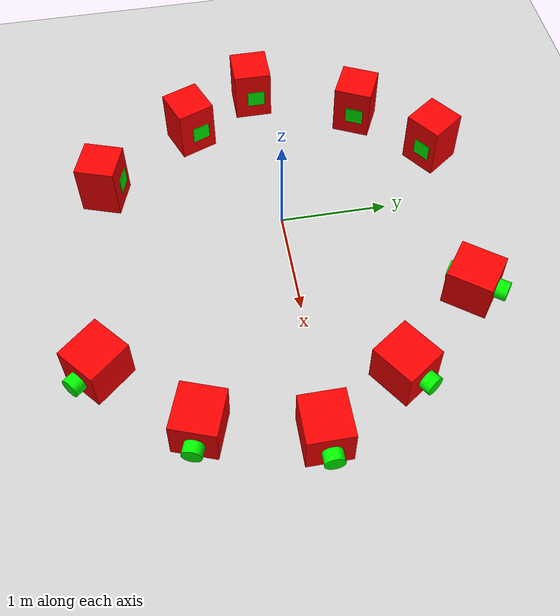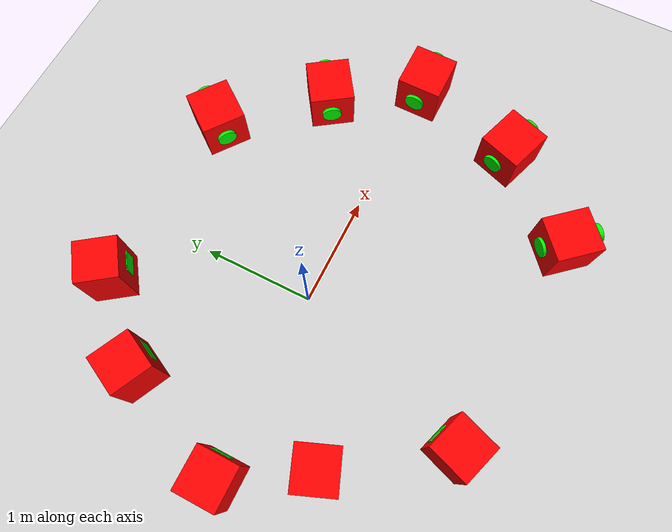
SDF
<sdf version="1.7">
 <world name="default">
  <light name="sun" type="directional">
   <pose>0 0 10 0 -0 0</pose>
   <diffuse>0.8 0.8 0.8 1</diffuse>
   <specular>0.2 0.2 0.2 1</specular>
   <attenuation>
    <range>1000</range>
    <constant>0.9</constant>
    <linear>0.01</linear>
    <quadratic>0.001</quadratic>
   </attenuation>
   <direction>-0.5 0.1 -0.9</direction>
   <spot><inner_angle>0</inner_angle><outer_angle>0</outer_angle><falloff>0</falloff></spot>
  </light>
  <model name="ground_plane">
   <static>1</static>
   <link name="link">
    <collision name="collision">
     <geometry><plane><normal>0 0 1</normal><size>100 100</size></plane></geometry>
     <surface>
      <contact><collide_bitmask>65535</collide_bitmask></contact>
      <friction><ode><mu>100</mu><mu2>50</mu2></ode></friction>
     </surface>
    </collision>
    <visual name="visual">
     <cast_shadows>0</cast_shadows>
     <geometry><plane><normal>0 0 1</normal><size>100 100</size></plane></geometry>
     <material>
      <script><uri>file://media/materials/scripts/gazebo.material</uri><name>Gazebo/Grey</name></script>
     </material>
    </visual>
   </link>
  </model>
  <gravity>0 0 -9.8</gravity>
  <magnetic_field>6e-06 2.3e-05 -4.2e-05</magnetic_field>
  <atmosphere type="adiabatic"/>
  <physics type="ode">
   <max_step_size>0.001</max_step_size>
   <real_time_factor>1</real_time_factor>
   <real_time_update_rate>1000</real_time_update_rate>
  </physics>
  <scene><ambient>0.4 0.4 0.4 1</ambient><background>0.7 0.7 0.7 1</background><shadows>1</shadows></scene>
  <spherical_coordinates>
   <surface_model>EARTH_WGS84</surface_model>
   <latitude_deg>0</latitude_deg>
   <longitude_deg>0</longitude_deg>
   <elevation>0</elevation>
   <heading_deg>0</heading_deg>
  </spherical_coordinates>
  <model name="Untitled3333">
   <link name="link_0">
    <inertial>
     <mass>0.0665017</mass>
     <inertia>
      <ixx>0.00178277</ixx>
      <ixy>0</ixy>
      <ixz>0</ixz>
      <iyy>0.00187929</iyy>
      <iyz>0</iyz>
      <izz>0.00180158</izz>
     </inertia>
    </inertial>
    <pose>-0.018929 -0.005702 0 0 -0 0</pose>
    <gravity>0</gravity>
    <visual name="visual">
     <geometry><box><size>0.413827 0.392218 0.409706</size></box></geometry>
     <material>
      <lighting>1</lighting>
      <script><uri>file://media/materials/scripts/gazebo.material</uri><name>Gazebo/Grey</name></script>
      <shader type="pixel"><normal_map>__default__</normal_map></shader>
      <ambient>1 0 0 0</ambient>
      <diffuse>0.7 0.7 0.7 1</diffuse>
      <specular>0.01 0.01 0.01 1</specular>
      <emissive>0 0 0 1</emissive>
     </material>
    </visual>
    <collision name="collision">
     <geometry><box><size>0.413827 0.392218 0.409706</size></box></geometry>
     <surface>
      <friction>
       <ode><mu>1</mu><mu2>1</mu2><fdir1>0 0 0</fdir1><slip1>0</slip1><slip2>0</slip2></ode>
       <torsional>
        <coefficient>1</coefficient>
        <patch_radius>0</patch_radius>
        <surface_radius>0</surface_radius>
        <use_patch_radius>1</use_patch_radius>
        <ode><slip>0</slip></ode>
       </torsional>
      </friction>
      <bounce><restitution_coefficient>0</restitution_coefficient><threshold>1e+06</threshold></bounce>
      <contact>
       <collide_without_contact>0</collide_without_contact>
       <collide_without_contact_bitmask>1</collide_without_contact_bitmask>
       <collide_bitmask>1</collide_bitmask>
       <ode>
        <soft_cfm>0</soft_cfm>
        <soft_erp>0.2</soft_erp>
        <kp>1e+13</kp>
        <kd>1</kd>
        <max_vel>0.01</max_vel>
        <min_depth>0</min_depth>
       </ode>
       <bullet>
        <split_impulse>1</split_impulse>
        <split_impulse_penetration_threshold>-0.01</split_impulse_penetration_threshold>
        <soft_cfm>0</soft_cfm>
        <soft_erp>0.2</soft_erp>
        <kp>1e+13</kp>
        <kd>1</kd>
       </bullet>
      </contact>
     </surface>
    </collision>
   </link>
   <link name="link_1">
    <inertial>
     <mass>0.0164067</mass>
     <inertia>
      <ixx>0.00043701</ixx>
      <ixy>0</ixy>
      <ixz>0</ixz>
      <iyy>0.00043701</iyy>
      <iyz>0</iyz>
      <izz>6.171e-05</izz>
     </inertia>
    </inertial>
    <pose>0.018926 0.005702 0 -3e-06 1.55761 -3e-06</pose>
    <gravity>0</gravity>
    <visual name="visual">
     <geometry><cylinder><radius>0.0867307</radius><length>0.545035</length></cylinder></geometry>
     <material>
      <lighting>1</lighting>
      <script><uri>file://media/materials/scripts/gazebo.material</uri><name>Gazebo/Grey</name></script>
      <shader type="pixel"><normal_map>__default__</normal_map></shader>
      <ambient>0 1 0 0</ambient>
      <diffuse>0.7 0.7 0.7 1</diffuse>
      <specular>0.01 0.01 0.01 1</specular>
      <emissive>0 0 0 1</emissive>
     </material>
    </visual>
    <collision name="collision">
     <geometry><cylinder><radius>0.086731</radius><length>0.545035</length></cylinder></geometry>
     <surface>
      <friction>
       <ode><mu>1</mu><mu2>1</mu2><fdir1>0 0 0</fdir1><slip1>0</slip1><slip2>0</slip2></ode>
       <torsional>
        <coefficient>1</coefficient>
        <patch_radius>0</patch_radius>
        <surface_radius>0</surface_radius>
        <use_patch_radius>1</use_patch_radius>
        <ode><slip>0</slip></ode>
       </torsional>
      </friction>
      <bounce><restitution_coefficient>0</restitution_coefficient><threshold>1e+06</threshold></bounce>
      <contact>
       <collide_without_contact>0</collide_without_contact>
       <collide_without_contact_bitmask>1</collide_without_contact_bitmask>
       <collide_bitmask>1</collide_bitmask>
       <ode>
        <soft_cfm>0</soft_cfm>
        <soft_erp>0.2</soft_erp>
        <kp>1e+13</kp>
        <kd>1</kd>
        <max_vel>0.01</max_vel>
        <min_depth>0</min_depth>
       </ode>
       <bullet>
        <split_impulse>1</split_impulse>
        <split_impulse_penetration_threshold>-0.01</split_impulse_penetration_threshold>
        <soft_cfm>0</soft_cfm>
        <soft_erp>0.2</soft_erp>
        <kp>1e+13</kp>
        <kd>1</kd>
       </bullet>
      </contact>
     </surface>
    </collision>
   </link>
   <static>0</static>
   <pose>2.29043 -0.048316 0.270427 0 -0 0</pose>
  </model>
  <model name="Untitled3333_clone">
   <link name="link_0">
    <inertial>
     <mass>0.0665017</mass>
     <inertia>
      <ixx>0.00178277</ixx>
      <ixy>0</ixy>
      <ixz>0</ixz>
      <iyy>0.00187929</iyy>
      <iyz>0</iyz>
      <izz>0.00180158</izz>
     </inertia>
    </inertial>
    <pose>-0.018929 -0.005702 0 0 -0 0</pose>
    <gravity>0</gravity>
    <visual name="visual">
     <geometry><box><size>0.413827 0.392218 0.409706</size></box></geometry>
     <material>
      <lighting>1</lighting>
      <script><uri>file://media/materials/scripts/gazebo.material</uri><name>Gazebo/Grey</name></script>
      <shader type="pixel"><normal_map>__default__</normal_map></shader>
      <ambient>1 0 0 0</ambient>
      <diffuse>0.7 0.7 0.7 1</diffuse>
      <specular>0.01 0.01 0.01 1</specular>
      <emissive>0 0 0 1</emissive>
     </material>
    </visual>
    <collision name="collision">
     <geometry><box><size>0.413827 0.392218 0.409706</size></box></geometry>
     <surface>
      <friction>
       <ode><mu>1</mu><mu2>1</mu2><fdir1>0 0 0</fdir1><slip1>0</slip1><slip2>0</slip2></ode>
       <torsional>
        <coefficient>1</coefficient>
        <patch_radius>0</patch_radius>
        <surface_radius>0</surface_radius>
        <use_patch_radius>1</use_patch_radius>
        <ode><slip>0</slip></ode>
       </torsional>
      </friction>
      <bounce><restitution_coefficient>0</restitution_coefficient><threshold>1e+06</threshold></bounce>
      <contact>
       <collide_without_contact>0</collide_without_contact>
       <collide_without_contact_bitmask>1</collide_without_contact_bitmask>
       <collide_bitmask>1</collide_bitmask>
       <ode>
        <soft_cfm>0</soft_cfm>
        <soft_erp>0.2</soft_erp>
        <kp>1e+13</kp>
        <kd>1</kd>
        <max_vel>0.01</max_vel>
        <min_depth>0</min_depth>
       </ode>
       <bullet>
        <split_impulse>1</split_impulse>
        <split_impulse_penetration_threshold>-0.01</split_impulse_penetration_threshold>
        <soft_cfm>0</soft_cfm>
        <soft_erp>0.2</soft_erp>
        <kp>1e+13</kp>
        <kd>1</kd>
       </bullet>
      </contact>
     </surface>
    </collision>
   </link>
   <link name="link_1">
    <inertial>
     <mass>0.0164067</mass>
     <inertia>
      <ixx>0.00043701</ixx>
      <ixy>0</ixy>
      <ixz>0</ixz>
      <iyy>0.00043701</iyy>
      <iyz>0</iyz>
      <izz>6.171e-05</izz>
     </inertia>
    </inertial>
    <pose>0.018926 0.005702 0 -3e-06 1.55761 -3e-06</pose>
    <gravity>0</gravity>
    <visual name="visual">
     <geometry><cylinder><radius>0.0867307</radius><length>0.545035</length></cylinder></geometry>
     <material>
      <lighting>1</lighting>
      <script><uri>file://media/materials/scripts/gazebo.material</uri><name>Gazebo/Grey</name></script>
      <shader type="pixel"><normal_map>__default__</normal_map></shader>
      <ambient>0 1 0 0</ambient>
      <diffuse>0.7 0.7 0.7 1</diffuse>
      <specular>0.01 0.01 0.01 1</specular>
      <emissive>0 0 0 1</emissive>
     </material>
    </visual>
    <collision name="collision">
     <geometry><cylinder><radius>0.086731</radius><length>0.545035</length></cylinder></geometry>
     <surface>
      <friction>
       <ode><mu>1</mu><mu2>1</mu2><fdir1>0 0 0</fdir1><slip1>0</slip1><slip2>0</slip2></ode>
       <torsional>
        <coefficient>1</coefficient>
        <patch_radius>0</patch_radius>
        <surface_radius>0</surface_radius>
        <use_patch_radius>1</use_patch_radius>
        <ode><slip>0</slip></ode>
       </torsional>
      </friction>
      <bounce><restitution_coefficient>0</restitution_coefficient><threshold>1e+06</threshold></bounce>
      <contact>
       <collide_without_contact>0</collide_without_contact>
       <collide_without_contact_bitmask>1</collide_without_contact_bitmask>
       <collide_bitmask>1</collide_bitmask>
       <ode>
        <soft_cfm>0</soft_cfm>
        <soft_erp>0.2</soft_erp>
        <kp>1e+13</kp>
        <kd>1</kd>
        <max_vel>0.01</max_vel>
        <min_depth>0</min_depth>
       </ode>
       <bullet>
        <split_impulse>1</split_impulse>
        <split_impulse_penetration_threshold>-0.01</split_impulse_penetration_threshold>
        <soft_cfm>0</soft_cfm>
        <soft_erp>0.2</soft_erp>
        <kp>1e+13</kp>
        <kd>1</kd>
       </bullet>
      </contact>
     </surface>
    </collision>
   </link>
   <static>0</static>
   <pose>1.12255 1.51895 0.229514 0 -0 0.922795</pose>
  </model>
  <model name="Untitled3333_clone_0">
   <link name="link_0">
    <inertial>
     <mass>0.0665017</mass>
     <inertia>
      <ixx>0.00178277</ixx>
      <ixy>0</ixy>
      <ixz>0</ixz>
      <iyy>0.00187929</iyy>
      <iyz>0</iyz>
      <izz>0.00180158</izz>
     </inertia>
    </inertial>
    <pose>-0.018929 -0.005702 0 0 -0 0</pose>
    <gravity>0</gravity>
    <visual name="visual">
     <geometry><box><size>0.413827 0.392218 0.409706</size></box></geometry>
     <material>
      <lighting>1</lighting>
      <script><uri>file://media/materials/scripts/gazebo.material</uri><name>Gazebo/Grey</name></script>
      <shader type="pixel"><normal_map>__default__</normal_map></shader>
      <ambient>1 0 0 0</ambient>
      <diffuse>0.7 0.7 0.7 1</diffuse>
      <specular>0.01 0.01 0.01 1</specular>
      <emissive>0 0 0 1</emissive>
     </material>
    </visual>
    <collision name="collision">
     <geometry><box><size>0.413827 0.392218 0.409706</size></box></geometry>
     <surface>
      <friction>
       <ode><mu>1</mu><mu2>1</mu2><fdir1>0 0 0</fdir1><slip1>0</slip1><slip2>0</slip2></ode>
       <torsional>
        <coefficient>1</coefficient>
        <patch_radius>0</patch_radius>
        <surface_radius>0</surface_radius>
        <use_patch_radius>1</use_patch_radius>
        <ode><slip>0</slip></ode>
       </torsional>
      </friction>
      <bounce><restitution_coefficient>0</restitution_coefficient><threshold>1e+06</threshold></bounce>
      <contact>
       <collide_without_contact>0</collide_without_contact>
       <collide_without_contact_bitmask>1</collide_without_contact_bitmask>
       <collide_bitmask>1</collide_bitmask>
       <ode>
        <soft_cfm>0</soft_cfm>
        <soft_erp>0.2</soft_erp>
        <kp>1e+13</kp>
        <kd>1</kd>
        <max_vel>0.01</max_vel>
        <min_depth>0</min_depth>
       </ode>
       <bullet>
        <split_impulse>1</split_impulse>
        <split_impulse_penetration_threshold>-0.01</split_impulse_penetration_threshold>
        <soft_cfm>0</soft_cfm>
        <soft_erp>0.2</soft_erp>
        <kp>1e+13</kp>
        <kd>1</kd>
       </bullet>
      </contact>
     </surface>
    </collision>
   </link>
   <link name="link_1">
    <inertial>
     <mass>0.0164067</mass>
     <inertia>
      <ixx>0.00043701</ixx>
      <ixy>0</ixy>
      <ixz>0</ixz>
      <iyy>0.00043701</iyy>
      <iyz>0</iyz>
      <izz>6.171e-05</izz>
     </inertia>
    </inertial>
    <pose>0.018926 0.005702 0 -3e-06 1.55761 -3e-06</pose>
    <gravity>0</gravity>
    <visual name="visual">
     <geometry><cylinder><radius>0.0867307</radius><length>0.545035</length></cylinder></geometry>
     <material>
      <lighting>1</lighting>
      <script><uri>file://media/materials/scripts/gazebo.material</uri><name>Gazebo/Grey</name></script>
      <shader type="pixel"><normal_map>__default__</normal_map></shader>
      <ambient>0 1 0 0</ambient>
      <diffuse>0.7 0.7 0.7 1</diffuse>
      <specular>0.01 0.01 0.01 1</specular>
      <emissive>0 0 0 1</emissive>
     </material>
    </visual>
    <collision name="collision">
     <geometry><cylinder><radius>0.086731</radius><length>0.545035</length></cylinder></geometry>
     <surface>
      <friction>
       <ode><mu>1</mu><mu2>1</mu2><fdir1>0 0 0</fdir1><slip1>0</slip1><slip2>0</slip2></ode>
       <torsional>
        <coefficient>1</coefficient>
        <patch_radius>0</patch_radius>
        <surface_radius>0</surface_radius>
        <use_patch_radius>1</use_patch_radius>
        <ode><slip>0</slip></ode>
       </torsional>
      </friction>
      <bounce><restitution_coefficient>0</restitution_coefficient><threshold>1e+06</threshold></bounce>
      <contact>
       <collide_without_contact>0</collide_without_contact>
       <collide_without_contact_bitmask>1</collide_without_contact_bitmask>
       <collide_bitmask>1</collide_bitmask>
       <ode>
        <soft_cfm>0</soft_cfm>
        <soft_erp>0.2</soft_erp>
        <kp>1e+13</kp>
        <kd>1</kd>
        <max_vel>0.01</max_vel>
        <min_depth>0</min_depth>
       </ode>
       <bullet>
        <split_impulse>1</split_impulse>
        <split_impulse_penetration_threshold>-0.01</split_impulse_penetration_threshold>
        <soft_cfm>0</soft_cfm>
        <soft_erp>0.2</soft_erp>
        <kp>1e+13</kp>
        <kd>1</kd>
       </bullet>
      </contact>
     </surface>
    </collision>
   </link>
   <static>0</static>
   <pose>1.82504 0.721813 0.226858 0 -0 0.597752</pose>
  </model>
  <model name="Untitled3333_clone_1">
   <link name="link_0">
    <inertial>
     <mass>0.0665017</mass>
     <inertia>
      <ixx>0.00178277</ixx>
      <ixy>0</ixy>
      <ixz>0</ixz>
      <iyy>0.00187929</iyy>
      <iyz>0</iyz>
      <izz>0.00180158</izz>
     </inertia>
    </inertial>
    <pose>-0.018929 -0.005702 0 0 -0 0</pose>
    <gravity>0</gravity>
    <visual name="visual">
     <geometry><box><size>0.413827 0.392218 0.409706</size></box></geometry>
     <material>
      <lighting>1</lighting>
      <script><uri>file://media/materials/scripts/gazebo.material</uri><name>Gazebo/Grey</name></script>
      <shader type="pixel"><normal_map>__default__</normal_map></shader>
      <ambient>1 0 0 0</ambient>
      <diffuse>0.7 0.7 0.7 1</diffuse>
      <specular>0.01 0.01 0.01 1</specular>
      <emissive>0 0 0 1</emissive>
     </material>
    </visual>
    <collision name="collision">
     <geometry><box><size>0.413827 0.392218 0.409706</size></box></geometry>
     <surface>
      <friction>
       <ode><mu>1</mu><mu2>1</mu2><fdir1>0 0 0</fdir1><slip1>0</slip1><slip2>0</slip2></ode>
       <torsional>
        <coefficient>1</coefficient>
        <patch_radius>0</patch_radius>
        <surface_radius>0</surface_radius>
        <use_patch_radius>1</use_patch_radius>
        <ode><slip>0</slip></ode>
       </torsional>
      </friction>
      <bounce><restitution_coefficient>0</restitution_coefficient><threshold>1e+06</threshold></bounce>
      <contact>
       <collide_without_contact>0</collide_without_contact>
       <collide_without_contact_bitmask>1</collide_without_contact_bitmask>
       <collide_bitmask>1</collide_bitmask>
       <ode>
        <soft_cfm>0</soft_cfm>
        <soft_erp>0.2</soft_erp>
        <kp>1e+13</kp>
        <kd>1</kd>
        <max_vel>0.01</max_vel>
        <min_depth>0</min_depth>
       </ode>
       <bullet>
        <split_impulse>1</split_impulse>
        <split_impulse_penetration_threshold>-0.01</split_impulse_penetration_threshold>
        <soft_cfm>0</soft_cfm>
        <soft_erp>0.2</soft_erp>
        <kp>1e+13</kp>
        <kd>1</kd>
       </bullet>
      </contact>
     </surface>
    </collision>
   </link>
   <link name="link_1">
    <inertial>
     <mass>0.0164067</mass>
     <inertia>
      <ixx>0.00043701</ixx>
      <ixy>0</ixy>
      <ixz>0</ixz>
      <iyy>0.00043701</iyy>
      <iyz>0</iyz>
      <izz>6.171e-05</izz>
     </inertia>
    </inertial>
    <pose>0.018926 0.005702 0 -3e-06 1.55761 -3e-06</pose>
    <gravity>0</gravity>
    <visual name="visual">
     <geometry><cylinder><radius>0.0867307</radius><length>0.545035</length></cylinder></geometry>
     <material>
      <lighting>1</lighting>
      <script><uri>file://media/materials/scripts/gazebo.material</uri><name>Gazebo/Grey</name></script>
      <shader type="pixel"><normal_map>__default__</normal_map></shader>
      <ambient>0 1 0 0</ambient>
      <diffuse>0.7 0.7 0.7 1</diffuse>
      <specular>0.01 0.01 0.01 1</specular>
      <emissive>0 0 0 1</emissive>
     </material>
    </visual>
    <collision name="collision">
     <geometry><cylinder><radius>0.086731</radius><length>0.545035</length></cylinder></geometry>
     <surface>
      <friction>
       <ode><mu>1</mu><mu2>1</mu2><fdir1>0 0 0</fdir1><slip1>0</slip1><slip2>0</slip2></ode>
       <torsional>
        <coefficient>1</coefficient>
        <patch_radius>0</patch_radius>
        <surface_radius>0</surface_radius>
        <use_patch_radius>1</use_patch_radius>
        <ode><slip>0</slip></ode>
       </torsional>
      </friction>
      <bounce><restitution_coefficient>0</restitution_coefficient><threshold>1e+06</threshold></bounce>
      <contact>
       <collide_without_contact>0</collide_without_contact>
       <collide_without_contact_bitmask>1</collide_without_contact_bitmask>
       <collide_bitmask>1</collide_bitmask>
       <ode>
        <soft_cfm>0</soft_cfm>
        <soft_erp>0.2</soft_erp>
        <kp>1e+13</kp>
        <kd>1</kd>
        <max_vel>0.01</max_vel>
        <min_depth>0</min_depth>
       </ode>
       <bullet>
        <split_impulse>1</split_impulse>
        <split_impulse_penetration_threshold>-0.01</split_impulse_penetration_threshold>
        <soft_cfm>0</soft_cfm>
        <soft_erp>0.2</soft_erp>
        <kp>1e+13</kp>
        <kd>1</kd>
       </bullet>
      </contact>
     </surface>
    </collision>
   </link>
   <static>0</static>
   <pose>2.03922 -1.01121 0.224446 -0.021815 -0.007745 -0.341097</pose>
  </model>
  <model name="Untitled3333_clone_2">
   <link name="link_0">
    <inertial>
     <mass>0.0665017</mass>
     <inertia>
      <ixx>0.00178277</ixx>
      <ixy>0</ixy>
      <ixz>0</ixz>
      <iyy>0.00187929</iyy>
      <iyz>0</iyz>
      <izz>0.00180158</izz>
     </inertia>
    </inertial>
    <pose>-0.018929 -0.005702 0 0 -0 0</pose>
    <gravity>0</gravity>
    <visual name="visual">
     <geometry><box><size>0.413827 0.392218 0.409706</size></box></geometry>
     <material>
      <lighting>1</lighting>
      <script><uri>file://media/materials/scripts/gazebo.material</uri><name>Gazebo/Grey</name></script>
      <shader type="pixel"><normal_map>__default__</normal_map></shader>
      <ambient>1 0 0 0</ambient>
      <diffuse>0.7 0.7 0.7 1</diffuse>
      <specular>0.01 0.01 0.01 1</specular>
      <emissive>0 0 0 1</emissive>
     </material>
    </visual>
    <collision name="collision">
     <geometry><box><size>0.413827 0.392218 0.409706</size></box></geometry>
     <surface>
      <friction>
       <ode><mu>1</mu><mu2>1</mu2><fdir1>0 0 0</fdir1><slip1>0</slip1><slip2>0</slip2></ode>
       <torsional>
        <coefficient>1</coefficient>
        <patch_radius>0</patch_radius>
        <surface_radius>0</surface_radius>
        <use_patch_radius>1</use_patch_radius>
        <ode><slip>0</slip></ode>
       </torsional>
      </friction>
      <bounce><restitution_coefficient>0</restitution_coefficient><threshold>1e+06</threshold></bounce>
      <contact>
       <collide_without_contact>0</collide_without_contact>
       <collide_without_contact_bitmask>1</collide_without_contact_bitmask>
       <collide_bitmask>1</collide_bitmask>
       <ode>
        <soft_cfm>0</soft_cfm>
        <soft_erp>0.2</soft_erp>
        <kp>1e+13</kp>
        <kd>1</kd>
        <max_vel>0.01</max_vel>
        <min_depth>0</min_depth>
       </ode>
       <bullet>
        <split_impulse>1</split_impulse>
        <split_impulse_penetration_threshold>-0.01</split_impulse_penetration_threshold>
        <soft_cfm>0</soft_cfm>
        <soft_erp>0.2</soft_erp>
        <kp>1e+13</kp>
        <kd>1</kd>
       </bullet>
      </contact>
     </surface>
    </collision>
   </link>
   <link name="link_1">
    <inertial>
     <mass>0.0164067</mass>
     <inertia>
      <ixx>0.00043701</ixx>
      <ixy>0</ixy>
      <ixz>0</ixz>
      <iyy>0.00043701</iyy>
      <iyz>0</iyz>
      <izz>6.171e-05</izz>
     </inertia>
    </inertial>
    <pose>0.018926 0.005702 0 -3e-06 1.55761 -3e-06</pose>
    <gravity>0</gravity>
    <visual name="visual">
     <geometry><cylinder><radius>0.0867307</radius><length>0.545035</length></cylinder></geometry>
     <material>
      <lighting>1</lighting>
      <script><uri>file://media/materials/scripts/gazebo.material</uri><name>Gazebo/Grey</name></script>
      <shader type="pixel"><normal_map>__default__</normal_map></shader>
      <ambient>0 1 0 0</ambient>
      <diffuse>0.7 0.7 0.7 1</diffuse>
      <specular>0.01 0.01 0.01 1</specular>
      <emissive>0 0 0 1</emissive>
     </material>
    </visual>
    <collision name="collision">
     <geometry><cylinder><radius>0.086731</radius><length>0.545035</length></cylinder></geometry>
     <surface>
      <friction>
       <ode><mu>1</mu><mu2>1</mu2><fdir1>0 0 0</fdir1><slip1>0</slip1><slip2>0</slip2></ode>
       <torsional>
        <coefficient>1</coefficient>
        <patch_radius>0</patch_radius>
        <surface_radius>0</surface_radius>
        <use_patch_radius>1</use_patch_radius>
        <ode><slip>0</slip></ode>
       </torsional>
      </friction>
      <bounce><restitution_coefficient>0</restitution_coefficient><threshold>1e+06</threshold></bounce>
      <contact>
       <collide_without_contact>0</collide_without_contact>
       <collide_without_contact_bitmask>1</collide_without_contact_bitmask>
       <collide_bitmask>1</collide_bitmask>
       <ode>
        <soft_cfm>0</soft_cfm>
        <soft_erp>0.2</soft_erp>
        <kp>1e+13</kp>
        <kd>1</kd>
        <max_vel>0.01</max_vel>
        <min_depth>0</min_depth>
       </ode>
       <bullet>
        <split_impulse>1</split_impulse>
        <split_impulse_penetration_threshold>-0.01</split_impulse_penetration_threshold>
        <soft_cfm>0</soft_cfm>
        <soft_erp>0.2</soft_erp>
        <kp>1e+13</kp>
        <kd>1</kd>
       </bullet>
      </contact>
     </surface>
    </collision>
   </link>
   <static>0</static>
   <pose>1.39318 -1.77826 0.254839 0 0 -0.855886</pose>
  </model>
  <model name="Untitled77">
   <link name="link_2">
    <inertial>
     <mass>0.078193</mass>
     <inertia>
      <ixx>0.00312522</ixx>
      <ixy>0</ixy>
      <ixz>0</ixz>
      <iyy>0.00315463</iyy>
      <iyz>0</iyz>
      <izz>0.00172041</izz>
     </inertia>
    </inertial>
    <pose>-0.052025 -0.015051 0 0 -0 0</pose>
    <gravity>0</gravity>
    <visual name="visual">
     <geometry><box><size>0.366428 0.360217 0.59149</size></box></geometry>
     <material>
      <lighting>1</lighting>
      <script><uri>file://media/materials/scripts/gazebo.material</uri><name>Gazebo/Grey</name></script>
      <shader type="pixel"><normal_map>__default__</normal_map></shader>
      <ambient>1 0 0 0</ambient>
      <diffuse>0.7 0.7 0.7 1</diffuse>
      <specular>0.01 0.01 0.01 1</specular>
      <emissive>0 0 0 1</emissive>
     </material>
    </visual>
    <collision name="collision">
     <geometry><box><size>0.366428 0.360217 0.59149</size></box></geometry>
     <surface>
      <friction>
       <ode><mu>1</mu><mu2>1</mu2><fdir1>0 0 0</fdir1><slip1>0</slip1><slip2>0</slip2></ode>
       <torsional>
        <coefficient>1</coefficient>
        <patch_radius>0</patch_radius>
        <surface_radius>0</surface_radius>
        <use_patch_radius>1</use_patch_radius>
        <ode><slip>0</slip></ode>
       </torsional>
      </friction>
      <bounce><restitution_coefficient>0</restitution_coefficient><threshold>1e+06</threshold></bounce>
      <contact>
       <collide_without_contact>0</collide_without_contact>
       <collide_without_contact_bitmask>1</collide_without_contact_bitmask>
       <collide_bitmask>1</collide_bitmask>
       <ode>
        <soft_cfm>0</soft_cfm>
        <soft_erp>0.2</soft_erp>
        <kp>1e+13</kp>
        <kd>1</kd>
        <max_vel>0.01</max_vel>
        <min_depth>0</min_depth>
       </ode>
       <bullet>
        <split_impulse>1</split_impulse>
        <split_impulse_penetration_threshold>-0.01</split_impulse_penetration_threshold>
        <soft_cfm>0</soft_cfm>
        <soft_erp>0.2</soft_erp>
        <kp>1e+13</kp>
        <kd>1</kd>
       </bullet>
      </contact>
     </surface>
    </collision>
   </link>
   <link name="link_3">
    <inertial>
     <mass>0.00507577</mass>
     <inertia>
      <ixx>2.499e-05</ixx>
      <ixy>0</ixy>
      <ixz>0</ixz>
      <iyy>2.499e-05</iyy>
      <iyz>0</iyz>
      <izz>2.499e-05</izz>
     </inertia>
    </inertial>
    <pose>0.052025 0.015051 0 0 -0 0</pose>
    <gravity>0</gravity>
    <visual name="visual">
     <geometry><box><size>0.171857 0.171857 0.171857</size></box></geometry>
     <material>
      <lighting>1</lighting>
      <script><uri>file://media/materials/scripts/gazebo.material</uri><name>Gazebo/Grey</name></script>
      <shader type="pixel"><normal_map>__default__</normal_map></shader>
      <ambient>0 1 0 0</ambient>
      <diffuse>0.7 0.7 0.7 1</diffuse>
      <specular>0.01 0.01 0.01 1</specular>
      <emissive>0 0 0 1</emissive>
     </material>
    </visual>
    <collision name="collision">
     <geometry><box><size>0.171857 0.171857 0.171857</size></box></geometry>
     <surface>
      <friction>
       <ode><mu>1</mu><mu2>1</mu2><fdir1>0 0 0</fdir1><slip1>0</slip1><slip2>0</slip2></ode>
       <torsional>
        <coefficient>1</coefficient>
        <patch_radius>0</patch_radius>
        <surface_radius>0</surface_radius>
        <use_patch_radius>1</use_patch_radius>
        <ode><slip>0</slip></ode>
       </torsional>
      </friction>
      <bounce><restitution_coefficient>0</restitution_coefficient><threshold>1e+06</threshold></bounce>
      <contact>
       <collide_without_contact>0</collide_without_contact>
       <collide_without_contact_bitmask>1</collide_without_contact_bitmask>
       <collide_bitmask>1</collide_bitmask>
       <ode>
        <soft_cfm>0</soft_cfm>
        <soft_erp>0.2</soft_erp>
        <kp>1e+13</kp>
        <kd>1</kd>
        <max_vel>0.01</max_vel>
        <min_depth>0</min_depth>
       </ode>
       <bullet>
        <split_impulse>1</split_impulse>
        <split_impulse_penetration_threshold>-0.01</split_impulse_penetration_threshold>
        <soft_cfm>0</soft_cfm>
        <soft_erp>0.2</soft_erp>
        <kp>1e+13</kp>
        <kd>1</kd>
       </bullet>
      </contact>
     </surface>
    </collision>
   </link>
   <static>0</static>
   <pose>-1.56187 -0.031748 0.233053 0 -0 0</pose>
  </model>
  <model name="Untitled77_clone">
   <link name="link_2">
    <inertial>
     <mass>0.078193</mass>
     <inertia>
      <ixx>0.00312522</ixx>
      <ixy>0</ixy>
      <ixz>0</ixz>
      <iyy>0.00315463</iyy>
      <iyz>0</iyz>
      <izz>0.00172041</izz>
     </inertia>
    </inertial>
    <pose>-0.052025 -0.015051 0 0 -0 0</pose>
    <gravity>0</gravity>
    <visual name="visual">
     <geometry><box><size>0.366428 0.360217 0.59149</size></box></geometry>
     <material>
      <lighting>1</lighting>
      <script><uri>file://media/materials/scripts/gazebo.material</uri><name>Gazebo/Grey</name></script>
      <shader type="pixel"><normal_map>__default__</normal_map></shader>
      <ambient>1 0 0 0</ambient>
      <diffuse>0.7 0.7 0.7 1</diffuse>
      <specular>0.01 0.01 0.01 1</specular>
      <emissive>0 0 0 1</emissive>
     </material>
    </visual>
    <collision name="collision">
     <geometry><box><size>0.366428 0.360217 0.59149</size></box></geometry>
     <surface>
      <friction>
       <ode><mu>1</mu><mu2>1</mu2><fdir1>0 0 0</fdir1><slip1>0</slip1><slip2>0</slip2></ode>
       <torsional>
        <coefficient>1</coefficient>
        <patch_radius>0</patch_radius>
        <surface_radius>0</surface_radius>
        <use_patch_radius>1</use_patch_radius>
        <ode><slip>0</slip></ode>
       </torsional>
      </friction>
      <bounce><restitution_coefficient>0</restitution_coefficient><threshold>1e+06</threshold></bounce>
      <contact>
       <collide_without_contact>0</collide_without_contact>
       <collide_without_contact_bitmask>1</collide_without_contact_bitmask>
       <collide_bitmask>1</collide_bitmask>
       <ode>
        <soft_cfm>0</soft_cfm>
        <soft_erp>0.2</soft_erp>
        <kp>1e+13</kp>
        <kd>1</kd>
        <max_vel>0.01</max_vel>
        <min_depth>0</min_depth>
       </ode>
       <bullet>
        <split_impulse>1</split_impulse>
        <split_impulse_penetration_threshold>-0.01</split_impulse_penetration_threshold>
        <soft_cfm>0</soft_cfm>
        <soft_erp>0.2</soft_erp>
        <kp>1e+13</kp>
        <kd>1</kd>
       </bullet>
      </contact>
     </surface>
    </collision>
   </link>
   <link name="link_3">
    <inertial>
     <mass>0.00507577</mass>
     <inertia>
      <ixx>2.499e-05</ixx>
      <ixy>0</ixy>
      <ixz>0</ixz>
      <iyy>2.499e-05</iyy>
      <iyz>0</iyz>
      <izz>2.499e-05</izz>
     </inertia>
    </inertial>
    <pose>0.052025 0.015051 0 0 -0 0</pose>
    <gravity>0</gravity>
    <visual name="visual">
     <geometry><box><size>0.171857 0.171857 0.171857</size></box></geometry>
     <material>
      <lighting>1</lighting>
      <script><uri>file://media/materials/scripts/gazebo.material</uri><name>Gazebo/Grey</name></script>
      <shader type="pixel"><normal_map>__default__</normal_map></shader>
      <ambient>0 1 0 0</ambient>
      <diffuse>0.7 0.7 0.7 1</diffuse>
      <specular>0.01 0.01 0.01 1</specular>
      <emissive>0 0 0 1</emissive>
     </material>
    </visual>
    <collision name="collision">
     <geometry><box><size>0.171857 0.171857 0.171857</size></box></geometry>
     <surface>
      <friction>
       <ode><mu>1</mu><mu2>1</mu2><fdir1>0 0 0</fdir1><slip1>0</slip1><slip2>0</slip2></ode>
       <torsional>
        <coefficient>1</coefficient>
        <patch_radius>0</patch_radius>
        <surface_radius>0</surface_radius>
        <use_patch_radius>1</use_patch_radius>
        <ode><slip>0</slip></ode>
       </torsional>
      </friction>
      <bounce><restitution_coefficient>0</restitution_coefficient><threshold>1e+06</threshold></bounce>
      <contact>
       <collide_without_contact>0</collide_without_contact>
       <collide_without_contact_bitmask>1</collide_without_contact_bitmask>
       <collide_bitmask>1</collide_bitmask>
       <ode>
        <soft_cfm>0</soft_cfm>
        <soft_erp>0.2</soft_erp>
        <kp>1e+13</kp>
        <kd>1</kd>
        <max_vel>0.01</max_vel>
        <min_depth>0</min_depth>
       </ode>
       <bullet>
        <split_impulse>1</split_impulse>
        <split_impulse_penetration_threshold>-0.01</split_impulse_penetration_threshold>
        <soft_cfm>0</soft_cfm>
        <soft_erp>0.2</soft_erp>
        <kp>1e+13</kp>
        <kd>1</kd>
       </bullet>
      </contact>
     </surface>
    </collision>
   </link>
   <static>0</static>
   <pose>-1.13724 0.955024 0.233053 0 0 -0.452946</pose>
  </model>
  <model name="Untitled77_clone_0">
   <link name="link_2">
    <inertial>
     <mass>0.078193</mass>
     <inertia>
      <ixx>0.00312522</ixx>
      <ixy>0</ixy>
      <ixz>0</ixz>
      <iyy>0.00315463</iyy>
      <iyz>0</iyz>
      <izz>0.00172041</izz>
     </inertia>
    </inertial>
    <pose>-0.052025 -0.015051 0 0 -0 0</pose>
    <gravity>0</gravity>
    <visual name="visual">
     <geometry><box><size>0.366428 0.360217 0.59149</size></box></geometry>
     <material>
      <lighting>1</lighting>
      <script><uri>file://media/materials/scripts/gazebo.material</uri><name>Gazebo/Grey</name></script>
      <shader type="pixel"><normal_map>__default__</normal_map></shader>
      <ambient>1 0 0 0</ambient>
      <diffuse>0.7 0.7 0.7 1</diffuse>
      <specular>0.01 0.01 0.01 1</specular>
      <emissive>0 0 0 1</emissive>
     </material>
    </visual>
    <collision name="collision">
     <geometry><box><size>0.366428 0.360217 0.59149</size></box></geometry>
     <surface>
      <friction>
       <ode><mu>1</mu><mu2>1</mu2><fdir1>0 0 0</fdir1><slip1>0</slip1><slip2>0</slip2></ode>
       <torsional>
        <coefficient>1</coefficient>
        <patch_radius>0</patch_radius>
        <surface_radius>0</surface_radius>
        <use_patch_radius>1</use_patch_radius>
        <ode><slip>0</slip></ode>
       </torsional>
      </friction>
      <bounce><restitution_coefficient>0</restitution_coefficient><threshold>1e+06</threshold></bounce>
      <contact>
       <collide_without_contact>0</collide_without_contact>
       <collide_without_contact_bitmask>1</collide_without_contact_bitmask>
       <collide_bitmask>1</collide_bitmask>
       <ode>
        <soft_cfm>0</soft_cfm>
        <soft_erp>0.2</soft_erp>
        <kp>1e+13</kp>
        <kd>1</kd>
        <max_vel>0.01</max_vel>
        <min_depth>0</min_depth>
       </ode>
       <bullet>
        <split_impulse>1</split_impulse>
        <split_impulse_penetration_threshold>-0.01</split_impulse_penetration_threshold>
        <soft_cfm>0</soft_cfm>
        <soft_erp>0.2</soft_erp>
        <kp>1e+13</kp>
        <kd>1</kd>
       </bullet>
      </contact>
     </surface>
    </collision>
   </link>
   <link name="link_3">
    <inertial>
     <mass>0.00507577</mass>
     <inertia>
      <ixx>2.499e-05</ixx>
      <ixy>0</ixy>
      <ixz>0</ixz>
      <iyy>2.499e-05</iyy>
      <iyz>0</iyz>
      <izz>2.499e-05</izz>
     </inertia>
    </inertial>
    <pose>0.052025 0.015051 0 0 -0 0</pose>
    <gravity>0</gravity>
    <visual name="visual">
     <geometry><box><size>0.171857 0.171857 0.171857</size></box></geometry>
     <material>
      <lighting>1</lighting>
      <script><uri>file://media/materials/scripts/gazebo.material</uri><name>Gazebo/Grey</name></script>
      <shader type="pixel"><normal_map>__default__</normal_map></shader>
      <ambient>0 1 0 0</ambient>
      <diffuse>0.7 0.7 0.7 1</diffuse>
      <specular>0.01 0.01 0.01 1</specular>
      <emissive>0 0 0 1</emissive>
     </material>
    </visual>
    <collision name="collision">
     <geometry><box><size>0.171857 0.171857 0.171857</size></box></geometry>
     <surface>
      <friction>
       <ode><mu>1</mu><mu2>1</mu2><fdir1>0 0 0</fdir1><slip1>0</slip1><slip2>0</slip2></ode>
       <torsional>
        <coefficient>1</coefficient>
        <patch_radius>0</patch_radius>
        <surface_radius>0</surface_radius>
        <use_patch_radius>1</use_patch_radius>
        <ode><slip>0</slip></ode>
       </torsional>
      </friction>
      <bounce><restitution_coefficient>0</restitution_coefficient><threshold>1e+06</threshold></bounce>
      <contact>
       <collide_without_contact>0</collide_without_contact>
       <collide_without_contact_bitmask>1</collide_without_contact_bitmask>
       <collide_bitmask>1</collide_bitmask>
       <ode>
        <soft_cfm>0</soft_cfm>
        <soft_erp>0.2</soft_erp>
        <kp>1e+13</kp>
        <kd>1</kd>
        <max_vel>0.01</max_vel>
        <min_depth>0</min_depth>
       </ode>
       <bullet>
        <split_impulse>1</split_impulse>
        <split_impulse_penetration_threshold>-0.01</split_impulse_penetration_threshold>
        <soft_cfm>0</soft_cfm>
        <soft_erp>0.2</soft_erp>
        <kp>1e+13</kp>
        <kd>1</kd>
       </bullet>
      </contact>
     </surface>
    </collision>
   </link>
   <static>0</static>
   <pose>-1.16638 -0.690375 0.233053 0 -0 0.374508</pose>
  </model>
  <model name="Untitled77_clone_1">
   <link name="link_2">
    <inertial>
     <mass>0.078193</mass>
     <inertia>
      <ixx>0.00312522</ixx>
      <ixy>0</ixy>
      <ixz>0</ixz>
      <iyy>0.00315463</iyy>
      <iyz>0</iyz>
      <izz>0.00172041</izz>
     </inertia>
    </inertial>
    <pose>-0.052025 -0.015051 0 0 -0 0</pose>
    <gravity>0</gravity>
    <visual name="visual">
     <geometry><box><size>0.366428 0.360217 0.59149</size></box></geometry>
     <material>
      <lighting>1</lighting>
      <script><uri>file://media/materials/scripts/gazebo.material</uri><name>Gazebo/Grey</name></script>
      <shader type="pixel"><normal_map>__default__</normal_map></shader>
      <ambient>1 0 0 0</ambient>
      <diffuse>0.7 0.7 0.7 1</diffuse>
      <specular>0.01 0.01 0.01 1</specular>
      <emissive>0 0 0 1</emissive>
     </material>
    </visual>
    <collision name="collision">
     <geometry><box><size>0.366428 0.360217 0.59149</size></box></geometry>
     <surface>
      <friction>
       <ode><mu>1</mu><mu2>1</mu2><fdir1>0 0 0</fdir1><slip1>0</slip1><slip2>0</slip2></ode>
       <torsional>
        <coefficient>1</coefficient>
        <patch_radius>0</patch_radius>
        <surface_radius>0</surface_radius>
        <use_patch_radius>1</use_patch_radius>
        <ode><slip>0</slip></ode>
       </torsional>
      </friction>
      <bounce><restitution_coefficient>0</restitution_coefficient><threshold>1e+06</threshold></bounce>
      <contact>
       <collide_without_contact>0</collide_without_contact>
       <collide_without_contact_bitmask>1</collide_without_contact_bitmask>
       <collide_bitmask>1</collide_bitmask>
       <ode>
        <soft_cfm>0</soft_cfm>
        <soft_erp>0.2</soft_erp>
        <kp>1e+13</kp>
        <kd>1</kd>
        <max_vel>0.01</max_vel>
        <min_depth>0</min_depth>
       </ode>
       <bullet>
        <split_impulse>1</split_impulse>
        <split_impulse_penetration_threshold>-0.01</split_impulse_penetration_threshold>
        <soft_cfm>0</soft_cfm>
        <soft_erp>0.2</soft_erp>
        <kp>1e+13</kp>
        <kd>1</kd>
       </bullet>
      </contact>
     </surface>
    </collision>
   </link>
   <link name="link_3">
    <inertial>
     <mass>0.00507577</mass>
     <inertia>
      <ixx>2.499e-05</ixx>
      <ixy>0</ixy>
      <ixz>0</ixz>
      <iyy>2.499e-05</iyy>
      <iyz>0</iyz>
      <izz>2.499e-05</izz>
     </inertia>
    </inertial>
    <pose>0.052025 0.015051 0 0 -0 0</pose>
    <gravity>0</gravity>
    <visual name="visual">
     <geometry><box><size>0.171857 0.171857 0.171857</size></box></geometry>
     <material>
      <lighting>1</lighting>
      <script><uri>file://media/materials/scripts/gazebo.material</uri><name>Gazebo/Grey</name></script>
      <shader type="pixel"><normal_map>__default__</normal_map></shader>
      <ambient>0 1 0 0</ambient>
      <diffuse>0.7 0.7 0.7 1</diffuse>
      <specular>0.01 0.01 0.01 1</specular>
      <emissive>0 0 0 1</emissive>
     </material>
    </visual>
    <collision name="collision">
     <geometry><box><size>0.171857 0.171857 0.171857</size></box></geometry>
     <surface>
      <friction>
       <ode><mu>1</mu><mu2>1</mu2><fdir1>0 0 0</fdir1><slip1>0</slip1><slip2>0</slip2></ode>
       <torsional>
        <coefficient>1</coefficient>
        <patch_radius>0</patch_radius>
        <surface_radius>0</surface_radius>
        <use_patch_radius>1</use_patch_radius>
        <ode><slip>0</slip></ode>
       </torsional>
      </friction>
      <bounce><restitution_coefficient>0</restitution_coefficient><threshold>1e+06</threshold></bounce>
      <contact>
       <collide_without_contact>0</collide_without_contact>
       <collide_without_contact_bitmask>1</collide_without_contact_bitmask>
       <collide_bitmask>1</collide_bitmask>
       <ode>
        <soft_cfm>0</soft_cfm>
        <soft_erp>0.2</soft_erp>
        <kp>1e+13</kp>
        <kd>1</kd>
        <max_vel>0.01</max_vel>
        <min_depth>0</min_depth>
       </ode>
       <bullet>
        <split_impulse>1</split_impulse>
        <split_impulse_penetration_threshold>-0.01</split_impulse_penetration_threshold>
        <soft_cfm>0</soft_cfm>
        <soft_erp>0.2</soft_erp>
        <kp>1e+13</kp>
        <kd>1</kd>
       </bullet>
      </contact>
     </surface>
    </collision>
   </link>
   <static>0</static>
   <pose>-0.585759 -1.56086 0.233053 0 -0 1.2404</pose>
  </model>
  <model name="Untitled77_clone_2">
   <link name="link_2">
    <inertial>
     <mass>0.078193</mass>
     <inertia>
      <ixx>0.00312522</ixx>
      <ixy>0</ixy>
      <ixz>0</ixz>
      <iyy>0.00315463</iyy>
      <iyz>0</iyz>
      <izz>0.00172041</izz>
     </inertia>
    </inertial>
    <pose>-0.052025 -0.015051 0 0 -0 0</pose>
    <gravity>0</gravity>
    <visual name="visual">
     <geometry><box><size>0.366428 0.360217 0.59149</size></box></geometry>
     <material>
      <lighting>1</lighting>
      <script><uri>file://media/materials/scripts/gazebo.material</uri><name>Gazebo/Grey</name></script>
      <shader type="pixel"><normal_map>__default__</normal_map></shader>
      <ambient>1 0 0 0</ambient>
      <diffuse>0.7 0.7 0.7 1</diffuse>
      <specular>0.01 0.01 0.01 1</specular>
      <emissive>0 0 0 1</emissive>
     </material>
    </visual>
    <collision name="collision">
     <geometry><box><size>0.366428 0.360217 0.59149</size></box></geometry>
     <surface>
      <friction>
       <ode><mu>1</mu><mu2>1</mu2><fdir1>0 0 0</fdir1><slip1>0</slip1><slip2>0</slip2></ode>
       <torsional>
        <coefficient>1</coefficient>
        <patch_radius>0</patch_radius>
        <surface_radius>0</surface_radius>
        <use_patch_radius>1</use_patch_radius>
        <ode><slip>0</slip></ode>
       </torsional>
      </friction>
      <bounce><restitution_coefficient>0</restitution_coefficient><threshold>1e+06</threshold></bounce>
      <contact>
       <collide_without_contact>0</collide_without_contact>
       <collide_without_contact_bitmask>1</collide_without_contact_bitmask>
       <collide_bitmask>1</collide_bitmask>
       <ode>
        <soft_cfm>0</soft_cfm>
        <soft_erp>0.2</soft_erp>
        <kp>1e+13</kp>
        <kd>1</kd>
        <max_vel>0.01</max_vel>
        <min_depth>0</min_depth>
       </ode>
       <bullet>
        <split_impulse>1</split_impulse>
        <split_impulse_penetration_threshold>-0.01</split_impulse_penetration_threshold>
        <soft_cfm>0</soft_cfm>
        <soft_erp>0.2</soft_erp>
        <kp>1e+13</kp>
        <kd>1</kd>
       </bullet>
      </contact>
     </surface>
    </collision>
   </link>
   <link name="link_3">
    <inertial>
     <mass>0.00507577</mass>
     <inertia>
      <ixx>2.499e-05</ixx>
      <ixy>0</ixy>
      <ixz>0</ixz>
      <iyy>2.499e-05</iyy>
      <iyz>0</iyz>
      <izz>2.499e-05</izz>
     </inertia>
    </inertial>
    <pose>0.052025 0.015051 0 0 -0 0</pose>
    <gravity>0</gravity>
    <visual name="visual">
     <geometry><box><size>0.171857 0.171857 0.171857</size></box></geometry>
     <material>
      <lighting>1</lighting>
      <script><uri>file://media/materials/scripts/gazebo.material</uri><name>Gazebo/Grey</name></script>
      <shader type="pixel"><normal_map>__default__</normal_map></shader>
      <ambient>0 1 0 0</ambient>
      <diffuse>0.7 0.7 0.7 1</diffuse>
      <specular>0.01 0.01 0.01 1</specular>
      <emissive>0 0 0 1</emissive>
     </material>
    </visual>
    <collision name="collision">
     <geometry><box><size>0.171857 0.171857 0.171857</size></box></geometry>
     <surface>
      <friction>
       <ode><mu>1</mu><mu2>1</mu2><fdir1>0 0 0</fdir1><slip1>0</slip1><slip2>0</slip2></ode>
       <torsional>
        <coefficient>1</coefficient>
        <patch_radius>0</patch_radius>
        <surface_radius>0</surface_radius>
        <use_patch_radius>1</use_patch_radius>
        <ode><slip>0</slip></ode>
       </torsional>
      </friction>
      <bounce><restitution_coefficient>0</restitution_coefficient><threshold>1e+06</threshold></bounce>
      <contact>
       <collide_without_contact>0</collide_without_contact>
       <collide_without_contact_bitmask>1</collide_without_contact_bitmask>
       <collide_bitmask>1</collide_bitmask>
       <ode>
        <soft_cfm>0</soft_cfm>
        <soft_erp>0.2</soft_erp>
        <kp>1e+13</kp>
        <kd>1</kd>
        <max_vel>0.01</max_vel>
        <min_depth>0</min_depth>
       </ode>
       <bullet>
        <split_impulse>1</split_impulse>
        <split_impulse_penetration_threshold>-0.01</split_impulse_penetration_threshold>
        <soft_cfm>0</soft_cfm>
        <soft_erp>0.2</soft_erp>
        <kp>1e+13</kp>
        <kd>1</kd>
       </bullet>
      </contact>
     </surface>
    </collision>
   </link>
   <static>0</static>
   <pose>-0.542708 1.55827 0.233053 0 0 -0.947327</pose>
  </model>
 </world>
</sdf>
